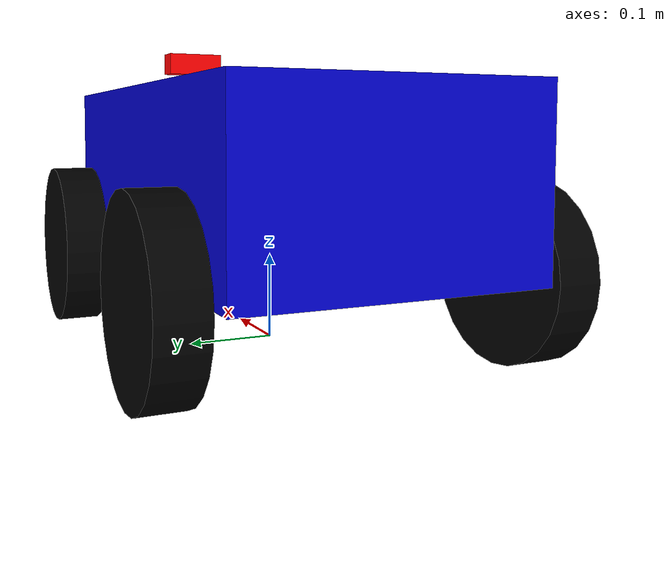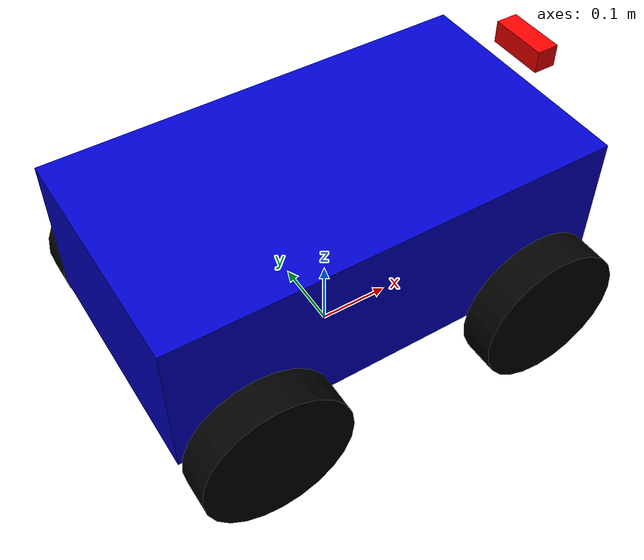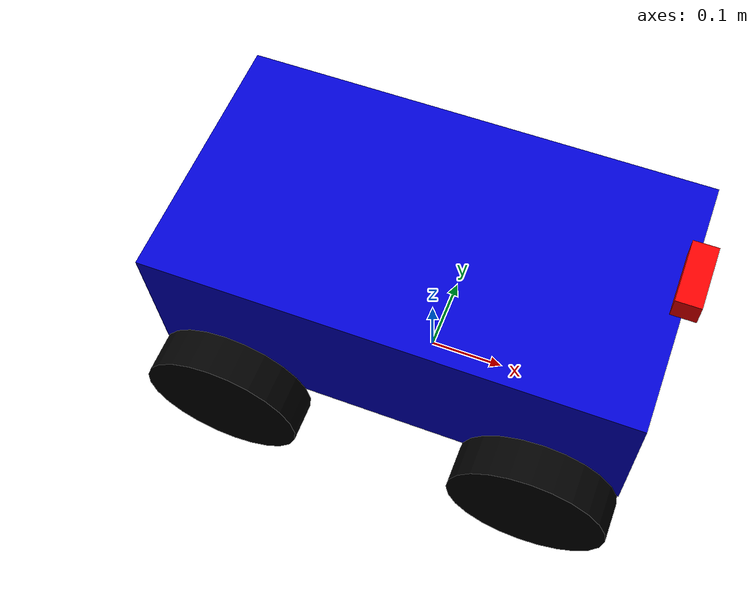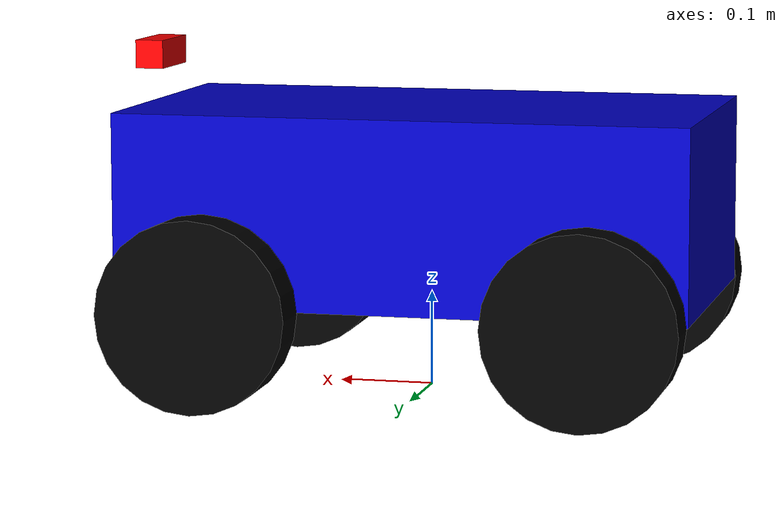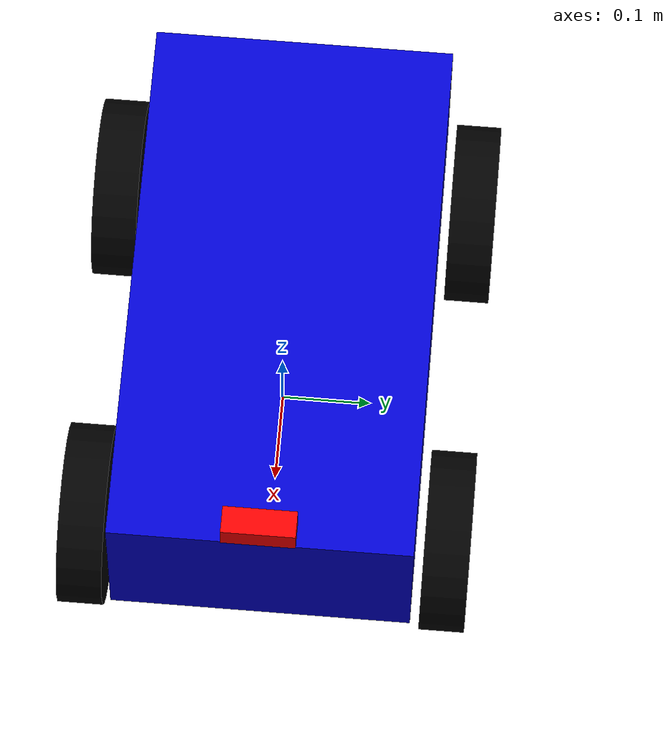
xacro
<?xml version="1.0"?>
<robot xmlns:xacro="http://www.ros.org/wiki/xacro" name="myfirst">

  <!-- GAZEBO SIM PLUGINS -->
  <gazebo>
    <plugin filename="gz-sim-mecanum-drive-system" name="gz::sim::systems::MecanumDrive">
      <front_left_joint>front_left_wheel_joint</front_left_joint>
      <front_right_joint>front_right_wheel_joint</front_right_joint>
      <back_left_joint>back_left_wheel_joint</back_left_joint>
      <back_right_joint>back_right_wheel_joint</back_right_joint>

      <wheel_separation>0.4</wheel_separation>
      <wheel_base>0.4</wheel_base>
      <wheel_radius>0.1</wheel_radius>

      <odom_publish_frequency>50</odom_publish_frequency>
      <topic>cmd_vel</topic>
      <frame_id>odom</frame_id>
      <child_frame_id>base_footprint</child_frame_id>
    </plugin>

    <plugin filename="gz-sim-sensors-system" name="gz::sim::systems::Sensors">
      <render_engine>ogre2</render_engine>
    </plugin>
  </gazebo>

  <!-- MATERIALS -->
  <material name="blue">
    <color rgba="0 0 0.8 1"/>
  </material>

  <material name="black">
    <color rgba="0 0 0 1"/>
  </material>

  <material name="red">
    <color rgba="1 0 0 1"/>
  </material>
<!-- WHEEL MACRO -->
  <xacro:macro name="wheel" params="name x y z ">
    <link name="${name}_link">
      <visual>
        <origin xyz="0 0 0" rpy="1.5708 0 0"/>
        <geometry>
          <cylinder radius="0.1" length="0.05"/>
        </geometry>
        <material name="black"/>
      </visual>

      <collision>
        <origin xyz="0 0 0" rpy="1.5708 0 0"/>
        <geometry>
          <cylinder radius="0.1" length="0.05"/>
        </geometry>
      </collision>

      <inertial>
        <mass value="0.5"/>
        <origin xyz="0 0 0" rpy="0 0 0"/>
        <inertia ixx="0.005" ixy="0.0" ixz="0.0" iyy="0.005" iyz="0.0" izz="0.005"/>
      </inertial>
    </link>

    <joint name="${name}_joint" type="continuous">
      <parent link="base_link"/>
      <child link="${name}_link"/>
      <origin xyz="${x} ${y} ${z}" rpy="0 0 0"/>
      <axis xyz="0 1 0"/>
    </joint>
  </xacro:macro>

  <!-- BASE FOOTPRINT -->
  <link name="base_footprint"/>

  <joint name="base_footprint_joint" type="fixed">
    <parent link="base_footprint"/>
    <child link="base_link"/>
    <origin xyz="0 0 0.2" rpy="0 0 0"/>
  </joint>

  <!-- BASE LINK -->
  <link name="base_link">
    <visual>
      <origin xyz="0 0 0" rpy="0 0 0"/>
      <geometry>
        <box size="0.6 0.33 0.2"/>
      </geometry>
      <material name="blue"/>
    </visual>

    <collision>
      <origin xyz="0 0 0" rpy="0 0 0"/>
      <geometry>
        <box size="0.6 0.33 0.2"/>
      </geometry>
    </collision>

    <inertial>
      <mass value="5.0"/>
      <origin xyz="0 0 0" rpy="0 0 0"/>
      <inertia ixx="0.05" ixy="0.0" ixz="0.0" iyy="0.05" iyz="0.0" izz="0.05"/>
    </inertial>
  </link>

  <!-- CAMERA LINK -->
  <link name="camera_link">
    <visual>
      <origin xyz="0 0 0" rpy="0 0 0"/>
      <geometry>
        <box size="0.03 0.08 0.03"/>
      </geometry>
      <material name="red"/>
    </visual>

    <collision>
      <origin xyz="0 0 0" rpy="0 0 0"/>
      <geometry>
        <box size="0.03 0.08 0.03"/>
      </geometry>
    </collision>

    <inertial>
      <mass value="0.05"/>
      <origin xyz="0 0 0" rpy="0 0 0"/>
      <inertia ixx="0.00001" ixy="0.0" ixz="0.0" iyy="0.00001" iyz="0.0" izz="0.00001"/>
    </inertial>
  </link>

  <joint name="camera_joint" type="fixed">
    <parent link="base_link"/>
    <child link="camera_link"/>
    <origin xyz="0.3 0 0.15" rpy="0 0 0"/>
  </joint>

  <!-- OPTICAL LINK FOR ROS/OPENCV -->
  <link name="camera_link_optical"/>

  <joint name="camera_optical_joint" type="fixed">
    <parent link="camera_link"/>
    <child link="camera_link_optical"/>
    <origin xyz="0 0 0" rpy="-1.5708 0 -1.5708"/>
  </joint>

  <!-- GAZEBO SIM CAMERA SENSOR -->
  <gazebo reference="camera_link">
    <sensor type="camera" name="camera_sensor">
      <update_rate>30.0</update_rate>
      <topic>camera/image_raw</topic>
      <gz_frame_id>camera_link_optical</gz_frame_id>
      <camera>
        <horizontal_fov>1.3962634</horizontal_fov>
        <image>
          <width>800</width>
          <height>800</height>
          <format>R8G8B8</format>
        </image>
        <clip>
          <near>0.01</near>
          <far>100.0</far>
        </clip>
      </camera>
    </sensor>
  </gazebo>

<!-- X-Pattern Friction Directions -->
  <xacro:wheel name="front_left_wheel"  x="0.2"  y="0.2"  z="-0.1"/>
  <xacro:wheel name="front_right_wheel" x="0.2"  y="-0.2" z="-0.1"/>
  <xacro:wheel name="back_left_wheel"   x="-0.2" y="0.2"  z="-0.1"/>
  <xacro:wheel name="back_right_wheel"  x="-0.2" y="-0.2" z="-0.1"/>

</robot>
